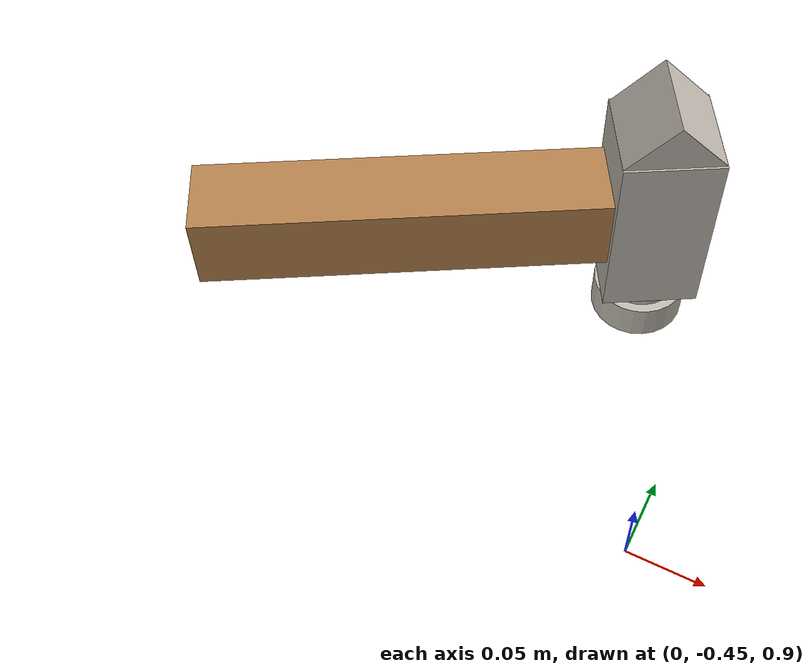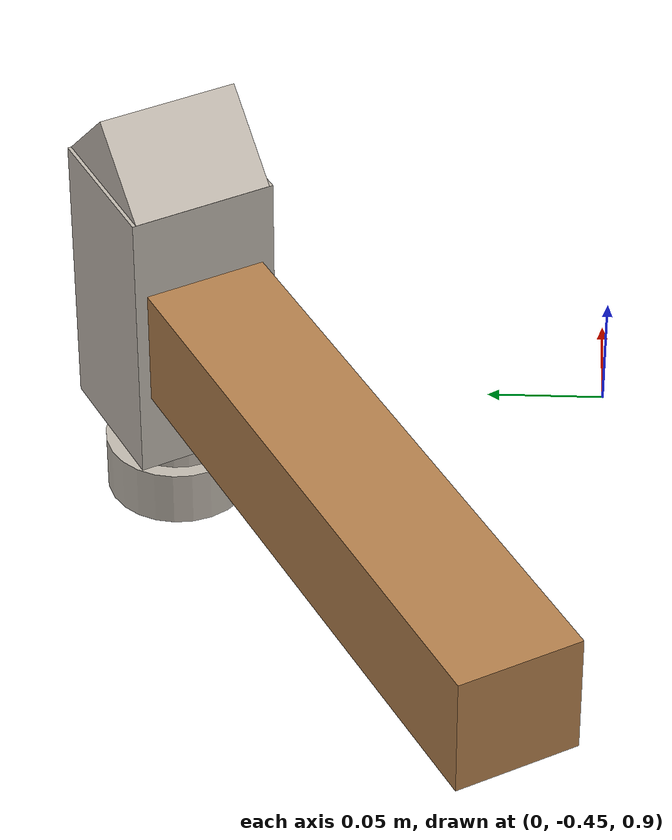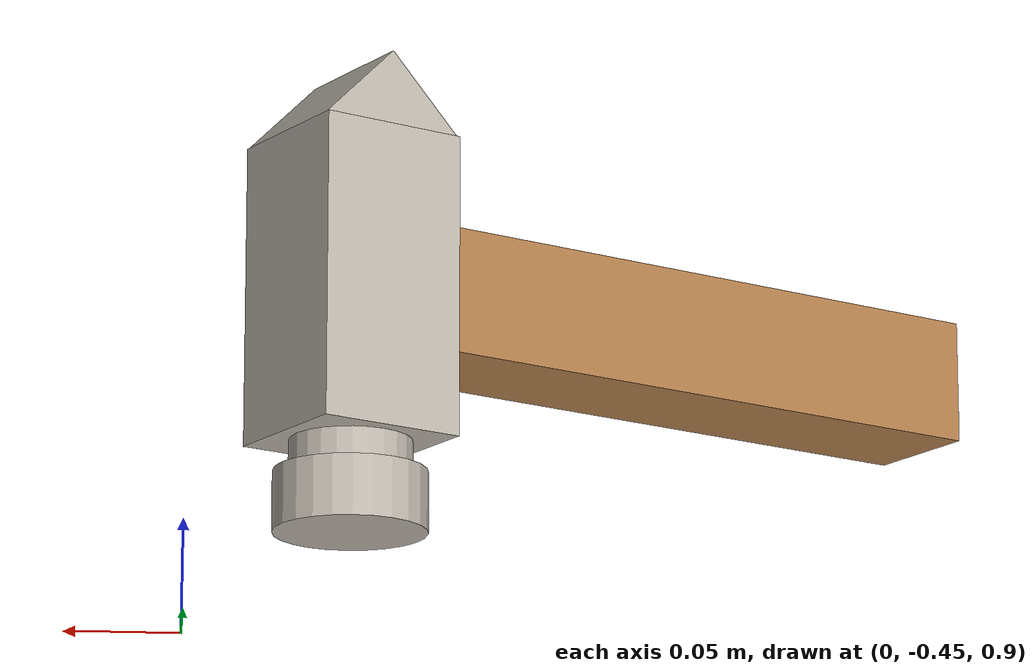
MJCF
<mujoco model="hammer">
  <asset>
    <texture name="wood" type="2d" file="./table_arena/textures/brass-ambra.png"/>
    <material name="wood_mat" texture="wood" texrepeat="1 1" texuniform="true" specular="0.4" shininess="0.1" rgba="1 1 1 1"/>

    <texture name="metal" type="2d" file="./table_arena/textures/metal.png"/>
    <material name="metal_mat" texture="metal" texrepeat="1 1" texuniform="true" specular="1" shininess="0.3" rgba="1 1 1 1"/>
  </asset>

  <worldbody>
    <!-- Hammer body. -->
    <body name="hammer_body" pos="-0.20 -0.35 1" quat="0.6830128 -0.1830125 0.6830128 0.1830125">
      <joint type="free" name="hammer_joint" damping="0.0005"/>

      <geom name="handle" type="box" pos="0 0 0" quat="1 0 0 0"
      size="0.0254 0.0254 0.1271" material="wood_mat"
      density="100"
      solref="0.005 1.0" solimp="0.95 0.99 0.001" />

      <geom name="head" type="box" pos="0 0 0.1575" quat="1 0 0 0"
            size="0.061 0.0305 0.0305" material="metal_mat"
            density="350" solref="0.005 1.0" solimp="0.95 0.99 0.001"/>

      <geom name="neck" type="cylinder" pos="0.0671 0 0.1575" quat="0.707106 0 0.707106 0"
            size="0.0244 0.0061" material="metal_mat"
            density="350" solref="0.005 1.0" solimp="0.95 0.99 0.001"/>

      <geom name="face" type="cylinder" pos="0.0854 0 0.1575" quat="0.707106 0 0.707106 0"
            size="0.0305 0.0122" material="metal_mat"
            density="350" solref="0.005 1.0" solimp="0.95 0.99 0.001"/>

      <geom name="claw" type="box" pos="-0.061 0 0.1575" quat="0.9238795 0 0.3826834 0"
            size="0.0215 0.029 0.0215" material="metal_mat"
            density="350" solref="0.005 1.0" solimp="0.95 0.99 0.001"/>

      <!-- Reference sites. -->
      <site name="bottom_site" pos="0 0 -0.1271" rgba="0 0 0 0" size="0.005"/>
      <site name="top_site" pos="0 0 0.1888" rgba="0 0 0 0" size="0.005"/>
      <site name="horizontal_radius_site" pos="0.2178 0 0" rgba="0 0 0 0" size="0.005"/>
    </body>
  </worldbody>
</mujoco>
